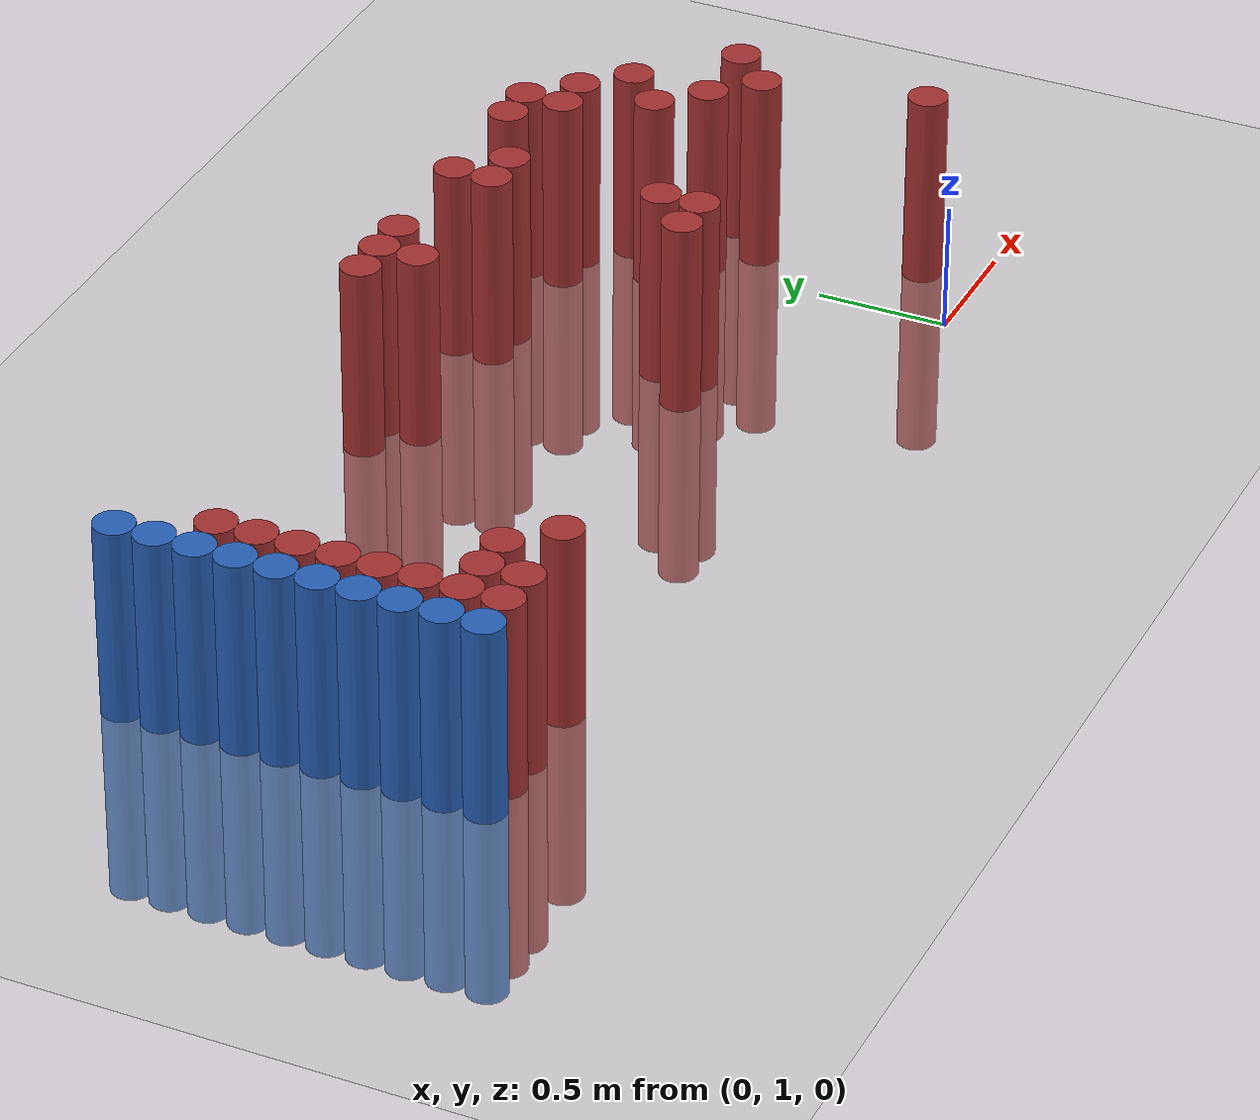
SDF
<sdf version="1.6">
 <world name="default">
  <model name="ground_plane">
   <static>1</static>
   <link name="link">
    <collision name="collision">
     <geometry><plane><normal>0 0 1</normal><size>100 100</size></plane></geometry>
     <surface><friction><ode><mu>100</mu><mu2>50</mu2></ode></friction></surface>
    </collision>
    <visual name="visual">
     <cast_shadows>0</cast_shadows>
     <geometry><plane><normal>0 0 1</normal><size>100 100</size></plane></geometry>
     <material>
      <script><uri>file://media/materials/scripts/gazebo.material</uri><name>Gazebo/Grey</name></script>
     </material>
    </visual>
   </link>
  </model>
  <model name="unit_cylinder_131">
   <static>1</static>
   <pose>-3.425000 1.225000 0.000000 0.000000 0.000000 0.000000</pose>
   <link name="link">
    <inertial>
     <mass>1</mass>
     <inertia><ixx>0.145833</ixx><ixy>0</ixy><ixz>0</ixz><iyy>0.145833</iyy><iyz>0</iyz><izz>0.125</izz></inertia>
    </inertial>
    <collision name="collision">
     <geometry><cylinder><radius>0.075000</radius><length>1.5</length></cylinder></geometry>
    </collision>
    <visual name="visual">
     <geometry><cylinder><radius>0.075000</radius><length>1.5</length></cylinder></geometry>
     <material>
      <ambient>0.152000 0.379000 0.720000 1</ambient>
      <diffuse>0.152000 0.379000 0.720000 1</diffuse>
     </material>
     <material>
      <script><name>Gazebo/Grey</name><uri>file://media/materials/scripts/gazebo.material</uri></script>
     </material>
    </visual>
   </link>
  </model>
  <model name="unit_cylinder_133">
   <static>1</static>
   <pose>-3.425000 1.375000 0.000000 0.000000 0.000000 0.000000</pose>
   <link name="link">
    <inertial>
     <mass>1</mass>
     <inertia><ixx>0.145833</ixx><ixy>0</ixy><ixz>0</ixz><iyy>0.145833</iyy><iyz>0</iyz><izz>0.125</izz></inertia>
    </inertial>
    <collision name="collision">
     <geometry><cylinder><radius>0.075000</radius><length>1.5</length></cylinder></geometry>
    </collision>
    <visual name="visual">
     <geometry><cylinder><radius>0.075000</radius><length>1.5</length></cylinder></geometry>
     <material>
      <ambient>0.152000 0.379000 0.720000 1</ambient>
      <diffuse>0.152000 0.379000 0.720000 1</diffuse>
     </material>
     <material>
      <script><name>Gazebo/Grey</name><uri>file://media/materials/scripts/gazebo.material</uri></script>
     </material>
    </visual>
   </link>
  </model>
  <model name="unit_cylinder_135">
   <static>1</static>
   <pose>-3.425000 1.525000 0.000000 0.000000 0.000000 0.000000</pose>
   <link name="link">
    <inertial>
     <mass>1</mass>
     <inertia><ixx>0.145833</ixx><ixy>0</ixy><ixz>0</ixz><iyy>0.145833</iyy><iyz>0</iyz><izz>0.125</izz></inertia>
    </inertial>
    <collision name="collision">
     <geometry><cylinder><radius>0.075000</radius><length>1.5</length></cylinder></geometry>
    </collision>
    <visual name="visual">
     <geometry><cylinder><radius>0.075000</radius><length>1.5</length></cylinder></geometry>
     <material>
      <ambient>0.152000 0.379000 0.720000 1</ambient>
      <diffuse>0.152000 0.379000 0.720000 1</diffuse>
     </material>
     <material>
      <script><name>Gazebo/Grey</name><uri>file://media/materials/scripts/gazebo.material</uri></script>
     </material>
    </visual>
   </link>
  </model>
  <model name="unit_cylinder_137">
   <static>1</static>
   <pose>-3.425000 1.675000 0.000000 0.000000 0.000000 0.000000</pose>
   <link name="link">
    <inertial>
     <mass>1</mass>
     <inertia><ixx>0.145833</ixx><ixy>0</ixy><ixz>0</ixz><iyy>0.145833</iyy><iyz>0</iyz><izz>0.125</izz></inertia>
    </inertial>
    <collision name="collision">
     <geometry><cylinder><radius>0.075000</radius><length>1.5</length></cylinder></geometry>
    </collision>
    <visual name="visual">
     <geometry><cylinder><radius>0.075000</radius><length>1.5</length></cylinder></geometry>
     <material>
      <ambient>0.152000 0.379000 0.720000 1</ambient>
      <diffuse>0.152000 0.379000 0.720000 1</diffuse>
     </material>
     <material>
      <script><name>Gazebo/Grey</name><uri>file://media/materials/scripts/gazebo.material</uri></script>
     </material>
    </visual>
   </link>
  </model>
  <model name="unit_cylinder_139">
   <static>1</static>
   <pose>-3.425000 1.825000 0.000000 0.000000 0.000000 0.000000</pose>
   <link name="link">
    <inertial>
     <mass>1</mass>
     <inertia><ixx>0.145833</ixx><ixy>0</ixy><ixz>0</ixz><iyy>0.145833</iyy><iyz>0</iyz><izz>0.125</izz></inertia>
    </inertial>
    <collision name="collision">
     <geometry><cylinder><radius>0.075000</radius><length>1.5</length></cylinder></geometry>
    </collision>
    <visual name="visual">
     <geometry><cylinder><radius>0.075000</radius><length>1.5</length></cylinder></geometry>
     <material>
      <ambient>0.152000 0.379000 0.720000 1</ambient>
      <diffuse>0.152000 0.379000 0.720000 1</diffuse>
     </material>
     <material>
      <script><name>Gazebo/Grey</name><uri>file://media/materials/scripts/gazebo.material</uri></script>
     </material>
    </visual>
   </link>
  </model>
  <model name="unit_cylinder_141">
   <static>1</static>
   <pose>-3.425000 1.975000 0.000000 0.000000 0.000000 0.000000</pose>
   <link name="link">
    <inertial>
     <mass>1</mass>
     <inertia><ixx>0.145833</ixx><ixy>0</ixy><ixz>0</ixz><iyy>0.145833</iyy><iyz>0</iyz><izz>0.125</izz></inertia>
    </inertial>
    <collision name="collision">
     <geometry><cylinder><radius>0.075000</radius><length>1.5</length></cylinder></geometry>
    </collision>
    <visual name="visual">
     <geometry><cylinder><radius>0.075000</radius><length>1.5</length></cylinder></geometry>
     <material>
      <ambient>0.152000 0.379000 0.720000 1</ambient>
      <diffuse>0.152000 0.379000 0.720000 1</diffuse>
     </material>
     <material>
      <script><name>Gazebo/Grey</name><uri>file://media/materials/scripts/gazebo.material</uri></script>
     </material>
    </visual>
   </link>
  </model>
  <model name="unit_cylinder_143">
   <static>1</static>
   <pose>-3.425000 2.125000 0.000000 0.000000 0.000000 0.000000</pose>
   <link name="link">
    <inertial>
     <mass>1</mass>
     <inertia><ixx>0.145833</ixx><ixy>0</ixy><ixz>0</ixz><iyy>0.145833</iyy><iyz>0</iyz><izz>0.125</izz></inertia>
    </inertial>
    <collision name="collision">
     <geometry><cylinder><radius>0.075000</radius><length>1.5</length></cylinder></geometry>
    </collision>
    <visual name="visual">
     <geometry><cylinder><radius>0.075000</radius><length>1.5</length></cylinder></geometry>
     <material>
      <ambient>0.152000 0.379000 0.720000 1</ambient>
      <diffuse>0.152000 0.379000 0.720000 1</diffuse>
     </material>
     <material>
      <script><name>Gazebo/Grey</name><uri>file://media/materials/scripts/gazebo.material</uri></script>
     </material>
    </visual>
   </link>
  </model>
  <model name="unit_cylinder_145">
   <static>1</static>
   <pose>-3.425000 2.275000 0.000000 0.000000 0.000000 0.000000</pose>
   <link name="link">
    <inertial>
     <mass>1</mass>
     <inertia><ixx>0.145833</ixx><ixy>0</ixy><ixz>0</ixz><iyy>0.145833</iyy><iyz>0</iyz><izz>0.125</izz></inertia>
    </inertial>
    <collision name="collision">
     <geometry><cylinder><radius>0.075000</radius><length>1.5</length></cylinder></geometry>
    </collision>
    <visual name="visual">
     <geometry><cylinder><radius>0.075000</radius><length>1.5</length></cylinder></geometry>
     <material>
      <ambient>0.152000 0.379000 0.720000 1</ambient>
      <diffuse>0.152000 0.379000 0.720000 1</diffuse>
     </material>
     <material>
      <script><name>Gazebo/Grey</name><uri>file://media/materials/scripts/gazebo.material</uri></script>
     </material>
    </visual>
   </link>
  </model>
  <model name="unit_cylinder_147">
   <static>1</static>
   <pose>-3.425000 2.425000 0.000000 0.000000 0.000000 0.000000</pose>
   <link name="link">
    <inertial>
     <mass>1</mass>
     <inertia><ixx>0.145833</ixx><ixy>0</ixy><ixz>0</ixz><iyy>0.145833</iyy><iyz>0</iyz><izz>0.125</izz></inertia>
    </inertial>
    <collision name="collision">
     <geometry><cylinder><radius>0.075000</radius><length>1.5</length></cylinder></geometry>
    </collision>
    <visual name="visual">
     <geometry><cylinder><radius>0.075000</radius><length>1.5</length></cylinder></geometry>
     <material>
      <ambient>0.152000 0.379000 0.720000 1</ambient>
      <diffuse>0.152000 0.379000 0.720000 1</diffuse>
     </material>
     <material>
      <script><name>Gazebo/Grey</name><uri>file://media/materials/scripts/gazebo.material</uri></script>
     </material>
    </visual>
   </link>
  </model>
  <model name="unit_cylinder_149">
   <static>1</static>
   <pose>-3.425000 2.575000 0.000000 0.000000 0.000000 0.000000</pose>
   <link name="link">
    <inertial>
     <mass>1</mass>
     <inertia><ixx>0.145833</ixx><ixy>0</ixy><ixz>0</ixz><iyy>0.145833</iyy><iyz>0</iyz><izz>0.125</izz></inertia>
    </inertial>
    <collision name="collision">
     <geometry><cylinder><radius>0.075000</radius><length>1.5</length></cylinder></geometry>
    </collision>
    <visual name="visual">
     <geometry><cylinder><radius>0.075000</radius><length>1.5</length></cylinder></geometry>
     <material>
      <ambient>0.152000 0.379000 0.720000 1</ambient>
      <diffuse>0.152000 0.379000 0.720000 1</diffuse>
     </material>
     <material>
      <script><name>Gazebo/Grey</name><uri>file://media/materials/scripts/gazebo.material</uri></script>
     </material>
    </visual>
   </link>
  </model>
  <model name="unit_cylinder_229">
   <static>1</static>
   <pose>-3.425000 1.225000 0.000000 0.000000 0.000000 0.000000</pose>
   <link name="link">
    <inertial>
     <mass>1</mass>
     <inertia><ixx>0.145833</ixx><ixy>0</ixy><ixz>0</ixz><iyy>0.145833</iyy><iyz>0</iyz><izz>0.125</izz></inertia>
    </inertial>
    <collision name="collision">
     <geometry><cylinder><radius>0.075000</radius><length>1.5</length></cylinder></geometry>
    </collision>
    <visual name="visual">
     <geometry><cylinder><radius>0.075000</radius><length>1.5</length></cylinder></geometry>
     <material>
      <ambient>0.152000 0.379000 0.720000 1</ambient>
      <diffuse>0.152000 0.379000 0.720000 1</diffuse>
     </material>
     <material>
      <script><name>Gazebo/Grey</name><uri>file://media/materials/scripts/gazebo.material</uri></script>
     </material>
    </visual>
   </link>
  </model>
  <model name="unit_cylinder_230">
   <static>1</static>
   <pose>-3.425000 1.375000 0.000000 0.000000 0.000000 0.000000</pose>
   <link name="link">
    <inertial>
     <mass>1</mass>
     <inertia><ixx>0.145833</ixx><ixy>0</ixy><ixz>0</ixz><iyy>0.145833</iyy><iyz>0</iyz><izz>0.125</izz></inertia>
    </inertial>
    <collision name="collision">
     <geometry><cylinder><radius>0.075000</radius><length>1.5</length></cylinder></geometry>
    </collision>
    <visual name="visual">
     <geometry><cylinder><radius>0.075000</radius><length>1.5</length></cylinder></geometry>
     <material>
      <ambient>0.152000 0.379000 0.720000 1</ambient>
      <diffuse>0.152000 0.379000 0.720000 1</diffuse>
     </material>
     <material>
      <script><name>Gazebo/Grey</name><uri>file://media/materials/scripts/gazebo.material</uri></script>
     </material>
    </visual>
   </link>
  </model>
  <model name="unit_cylinder_231">
   <static>1</static>
   <pose>-3.425000 1.525000 0.000000 0.000000 0.000000 0.000000</pose>
   <link name="link">
    <inertial>
     <mass>1</mass>
     <inertia><ixx>0.145833</ixx><ixy>0</ixy><ixz>0</ixz><iyy>0.145833</iyy><iyz>0</iyz><izz>0.125</izz></inertia>
    </inertial>
    <collision name="collision">
     <geometry><cylinder><radius>0.075000</radius><length>1.5</length></cylinder></geometry>
    </collision>
    <visual name="visual">
     <geometry><cylinder><radius>0.075000</radius><length>1.5</length></cylinder></geometry>
     <material>
      <ambient>0.152000 0.379000 0.720000 1</ambient>
      <diffuse>0.152000 0.379000 0.720000 1</diffuse>
     </material>
     <material>
      <script><name>Gazebo/Grey</name><uri>file://media/materials/scripts/gazebo.material</uri></script>
     </material>
    </visual>
   </link>
  </model>
  <model name="unit_cylinder_232">
   <static>1</static>
   <pose>-3.425000 1.675000 0.000000 0.000000 0.000000 0.000000</pose>
   <link name="link">
    <inertial>
     <mass>1</mass>
     <inertia><ixx>0.145833</ixx><ixy>0</ixy><ixz>0</ixz><iyy>0.145833</iyy><iyz>0</iyz><izz>0.125</izz></inertia>
    </inertial>
    <collision name="collision">
     <geometry><cylinder><radius>0.075000</radius><length>1.5</length></cylinder></geometry>
    </collision>
    <visual name="visual">
     <geometry><cylinder><radius>0.075000</radius><length>1.5</length></cylinder></geometry>
     <material>
      <ambient>0.152000 0.379000 0.720000 1</ambient>
      <diffuse>0.152000 0.379000 0.720000 1</diffuse>
     </material>
     <material>
      <script><name>Gazebo/Grey</name><uri>file://media/materials/scripts/gazebo.material</uri></script>
     </material>
    </visual>
   </link>
  </model>
  <model name="unit_cylinder_233">
   <static>1</static>
   <pose>-3.425000 1.825000 0.000000 0.000000 0.000000 0.000000</pose>
   <link name="link">
    <inertial>
     <mass>1</mass>
     <inertia><ixx>0.145833</ixx><ixy>0</ixy><ixz>0</ixz><iyy>0.145833</iyy><iyz>0</iyz><izz>0.125</izz></inertia>
    </inertial>
    <collision name="collision">
     <geometry><cylinder><radius>0.075000</radius><length>1.5</length></cylinder></geometry>
    </collision>
    <visual name="visual">
     <geometry><cylinder><radius>0.075000</radius><length>1.5</length></cylinder></geometry>
     <material>
      <ambient>0.152000 0.379000 0.720000 1</ambient>
      <diffuse>0.152000 0.379000 0.720000 1</diffuse>
     </material>
     <material>
      <script><name>Gazebo/Grey</name><uri>file://media/materials/scripts/gazebo.material</uri></script>
     </material>
    </visual>
   </link>
  </model>
  <model name="unit_cylinder_234">
   <static>1</static>
   <pose>-3.425000 1.975000 0.000000 0.000000 0.000000 0.000000</pose>
   <link name="link">
    <inertial>
     <mass>1</mass>
     <inertia><ixx>0.145833</ixx><ixy>0</ixy><ixz>0</ixz><iyy>0.145833</iyy><iyz>0</iyz><izz>0.125</izz></inertia>
    </inertial>
    <collision name="collision">
     <geometry><cylinder><radius>0.075000</radius><length>1.5</length></cylinder></geometry>
    </collision>
    <visual name="visual">
     <geometry><cylinder><radius>0.075000</radius><length>1.5</length></cylinder></geometry>
     <material>
      <ambient>0.152000 0.379000 0.720000 1</ambient>
      <diffuse>0.152000 0.379000 0.720000 1</diffuse>
     </material>
     <material>
      <script><name>Gazebo/Grey</name><uri>file://media/materials/scripts/gazebo.material</uri></script>
     </material>
    </visual>
   </link>
  </model>
  <model name="unit_cylinder_235">
   <static>1</static>
   <pose>-3.425000 2.125000 0.000000 0.000000 0.000000 0.000000</pose>
   <link name="link">
    <inertial>
     <mass>1</mass>
     <inertia><ixx>0.145833</ixx><ixy>0</ixy><ixz>0</ixz><iyy>0.145833</iyy><iyz>0</iyz><izz>0.125</izz></inertia>
    </inertial>
    <collision name="collision">
     <geometry><cylinder><radius>0.075000</radius><length>1.5</length></cylinder></geometry>
    </collision>
    <visual name="visual">
     <geometry><cylinder><radius>0.075000</radius><length>1.5</length></cylinder></geometry>
     <material>
      <ambient>0.152000 0.379000 0.720000 1</ambient>
      <diffuse>0.152000 0.379000 0.720000 1</diffuse>
     </material>
     <material>
      <script><name>Gazebo/Grey</name><uri>file://media/materials/scripts/gazebo.material</uri></script>
     </material>
    </visual>
   </link>
  </model>
  <model name="unit_cylinder_236">
   <static>1</static>
   <pose>-3.425000 2.275000 0.000000 0.000000 0.000000 0.000000</pose>
   <link name="link">
    <inertial>
     <mass>1</mass>
     <inertia><ixx>0.145833</ixx><ixy>0</ixy><ixz>0</ixz><iyy>0.145833</iyy><iyz>0</iyz><izz>0.125</izz></inertia>
    </inertial>
    <collision name="collision">
     <geometry><cylinder><radius>0.075000</radius><length>1.5</length></cylinder></geometry>
    </collision>
    <visual name="visual">
     <geometry><cylinder><radius>0.075000</radius><length>1.5</length></cylinder></geometry>
     <material>
      <ambient>0.152000 0.379000 0.720000 1</ambient>
      <diffuse>0.152000 0.379000 0.720000 1</diffuse>
     </material>
     <material>
      <script><name>Gazebo/Grey</name><uri>file://media/materials/scripts/gazebo.material</uri></script>
     </material>
    </visual>
   </link>
  </model>
  <model name="unit_cylinder_237">
   <static>1</static>
   <pose>-3.425000 2.425000 0.000000 0.000000 0.000000 0.000000</pose>
   <link name="link">
    <inertial>
     <mass>1</mass>
     <inertia><ixx>0.145833</ixx><ixy>0</ixy><ixz>0</ixz><iyy>0.145833</iyy><iyz>0</iyz><izz>0.125</izz></inertia>
    </inertial>
    <collision name="collision">
     <geometry><cylinder><radius>0.075000</radius><length>1.5</length></cylinder></geometry>
    </collision>
    <visual name="visual">
     <geometry><cylinder><radius>0.075000</radius><length>1.5</length></cylinder></geometry>
     <material>
      <ambient>0.152000 0.379000 0.720000 1</ambient>
      <diffuse>0.152000 0.379000 0.720000 1</diffuse>
     </material>
     <material>
      <script><name>Gazebo/Grey</name><uri>file://media/materials/scripts/gazebo.material</uri></script>
     </material>
    </visual>
   </link>
  </model>
  <model name="unit_cylinder_238">
   <static>1</static>
   <pose>-3.425000 2.575000 0.000000 0.000000 0.000000 0.000000</pose>
   <link name="link">
    <inertial>
     <mass>1</mass>
     <inertia><ixx>0.145833</ixx><ixy>0</ixy><ixz>0</ixz><iyy>0.145833</iyy><iyz>0</iyz><izz>0.125</izz></inertia>
    </inertial>
    <collision name="collision">
     <geometry><cylinder><radius>0.075000</radius><length>1.5</length></cylinder></geometry>
    </collision>
    <visual name="visual">
     <geometry><cylinder><radius>0.075000</radius><length>1.5</length></cylinder></geometry>
     <material>
      <ambient>0.152000 0.379000 0.720000 1</ambient>
      <diffuse>0.152000 0.379000 0.720000 1</diffuse>
     </material>
     <material>
      <script><name>Gazebo/Grey</name><uri>file://media/materials/scripts/gazebo.material</uri></script>
     </material>
    </visual>
   </link>
  </model>
  <model name="unit_cylinder_264">
   <static>1</static>
   <pose>-3.275000 1.225000 0.000000 0.000000 0.000000 0.000000</pose>
   <link name="link">
    <inertial>
     <mass>1</mass>
     <inertia><ixx>0.145833</ixx><ixy>0</ixy><ixz>0</ixz><iyy>0.145833</iyy><iyz>0</iyz><izz>0.125</izz></inertia>
    </inertial>
    <collision name="collision">
     <geometry><cylinder><radius>0.075000</radius><length>1.5</length></cylinder></geometry>
    </collision>
    <visual name="visual">
     <geometry><cylinder><radius>0.075000</radius><length>1.5</length></cylinder></geometry>
     <material>
      <ambient>0.648000 0.192000 0.192000 1</ambient>
      <diffuse>0.648000 0.192000 0.192000 1</diffuse>
     </material>
     <material>
      <script><name>Gazebo/Grey</name><uri>file://media/materials/scripts/gazebo.material</uri></script>
     </material>
    </visual>
   </link>
  </model>
  <model name="unit_cylinder_265">
   <static>1</static>
   <pose>-3.275000 1.375000 0.000000 0.000000 0.000000 0.000000</pose>
   <link name="link">
    <inertial>
     <mass>1</mass>
     <inertia><ixx>0.145833</ixx><ixy>0</ixy><ixz>0</ixz><iyy>0.145833</iyy><iyz>0</iyz><izz>0.125</izz></inertia>
    </inertial>
    <collision name="collision">
     <geometry><cylinder><radius>0.075000</radius><length>1.5</length></cylinder></geometry>
    </collision>
    <visual name="visual">
     <geometry><cylinder><radius>0.075000</radius><length>1.5</length></cylinder></geometry>
     <material>
      <ambient>0.648000 0.192000 0.192000 1</ambient>
      <diffuse>0.648000 0.192000 0.192000 1</diffuse>
     </material>
     <material>
      <script><name>Gazebo/Grey</name><uri>file://media/materials/scripts/gazebo.material</uri></script>
     </material>
    </visual>
   </link>
  </model>
  <model name="unit_cylinder_266">
   <static>1</static>
   <pose>-3.275000 1.525000 0.000000 0.000000 0.000000 0.000000</pose>
   <link name="link">
    <inertial>
     <mass>1</mass>
     <inertia><ixx>0.145833</ixx><ixy>0</ixy><ixz>0</ixz><iyy>0.145833</iyy><iyz>0</iyz><izz>0.125</izz></inertia>
    </inertial>
    <collision name="collision">
     <geometry><cylinder><radius>0.075000</radius><length>1.5</length></cylinder></geometry>
    </collision>
    <visual name="visual">
     <geometry><cylinder><radius>0.075000</radius><length>1.5</length></cylinder></geometry>
     <material>
      <ambient>0.648000 0.192000 0.192000 1</ambient>
      <diffuse>0.648000 0.192000 0.192000 1</diffuse>
     </material>
     <material>
      <script><name>Gazebo/Grey</name><uri>file://media/materials/scripts/gazebo.material</uri></script>
     </material>
    </visual>
   </link>
  </model>
  <model name="unit_cylinder_267">
   <static>1</static>
   <pose>-3.275000 1.675000 0.000000 0.000000 0.000000 0.000000</pose>
   <link name="link">
    <inertial>
     <mass>1</mass>
     <inertia><ixx>0.145833</ixx><ixy>0</ixy><ixz>0</ixz><iyy>0.145833</iyy><iyz>0</iyz><izz>0.125</izz></inertia>
    </inertial>
    <collision name="collision">
     <geometry><cylinder><radius>0.075000</radius><length>1.5</length></cylinder></geometry>
    </collision>
    <visual name="visual">
     <geometry><cylinder><radius>0.075000</radius><length>1.5</length></cylinder></geometry>
     <material>
      <ambient>0.648000 0.192000 0.192000 1</ambient>
      <diffuse>0.648000 0.192000 0.192000 1</diffuse>
     </material>
     <material>
      <script><name>Gazebo/Grey</name><uri>file://media/materials/scripts/gazebo.material</uri></script>
     </material>
    </visual>
   </link>
  </model>
  <model name="unit_cylinder_268">
   <static>1</static>
   <pose>-3.275000 1.825000 0.000000 0.000000 0.000000 0.000000</pose>
   <link name="link">
    <inertial>
     <mass>1</mass>
     <inertia><ixx>0.145833</ixx><ixy>0</ixy><ixz>0</ixz><iyy>0.145833</iyy><iyz>0</iyz><izz>0.125</izz></inertia>
    </inertial>
    <collision name="collision">
     <geometry><cylinder><radius>0.075000</radius><length>1.5</length></cylinder></geometry>
    </collision>
    <visual name="visual">
     <geometry><cylinder><radius>0.075000</radius><length>1.5</length></cylinder></geometry>
     <material>
      <ambient>0.648000 0.192000 0.192000 1</ambient>
      <diffuse>0.648000 0.192000 0.192000 1</diffuse>
     </material>
     <material>
      <script><name>Gazebo/Grey</name><uri>file://media/materials/scripts/gazebo.material</uri></script>
     </material>
    </visual>
   </link>
  </model>
  <model name="unit_cylinder_269">
   <static>1</static>
   <pose>-3.275000 1.975000 0.000000 0.000000 0.000000 0.000000</pose>
   <link name="link">
    <inertial>
     <mass>1</mass>
     <inertia><ixx>0.145833</ixx><ixy>0</ixy><ixz>0</ixz><iyy>0.145833</iyy><iyz>0</iyz><izz>0.125</izz></inertia>
    </inertial>
    <collision name="collision">
     <geometry><cylinder><radius>0.075000</radius><length>1.5</length></cylinder></geometry>
    </collision>
    <visual name="visual">
     <geometry><cylinder><radius>0.075000</radius><length>1.5</length></cylinder></geometry>
     <material>
      <ambient>0.648000 0.192000 0.192000 1</ambient>
      <diffuse>0.648000 0.192000 0.192000 1</diffuse>
     </material>
     <material>
      <script><name>Gazebo/Grey</name><uri>file://media/materials/scripts/gazebo.material</uri></script>
     </material>
    </visual>
   </link>
  </model>
  <model name="unit_cylinder_270">
   <static>1</static>
   <pose>-3.275000 2.125000 0.000000 0.000000 0.000000 0.000000</pose>
   <link name="link">
    <inertial>
     <mass>1</mass>
     <inertia><ixx>0.145833</ixx><ixy>0</ixy><ixz>0</ixz><iyy>0.145833</iyy><iyz>0</iyz><izz>0.125</izz></inertia>
    </inertial>
    <collision name="collision">
     <geometry><cylinder><radius>0.075000</radius><length>1.5</length></cylinder></geometry>
    </collision>
    <visual name="visual">
     <geometry><cylinder><radius>0.075000</radius><length>1.5</length></cylinder></geometry>
     <material>
      <ambient>0.648000 0.192000 0.192000 1</ambient>
      <diffuse>0.648000 0.192000 0.192000 1</diffuse>
     </material>
     <material>
      <script><name>Gazebo/Grey</name><uri>file://media/materials/scripts/gazebo.material</uri></script>
     </material>
    </visual>
   </link>
  </model>
  <model name="unit_cylinder_271">
   <static>1</static>
   <pose>-3.275000 2.275000 0.000000 0.000000 0.000000 0.000000</pose>
   <link name="link">
    <inertial>
     <mass>1</mass>
     <inertia><ixx>0.145833</ixx><ixy>0</ixy><ixz>0</ixz><iyy>0.145833</iyy><iyz>0</iyz><izz>0.125</izz></inertia>
    </inertial>
    <collision name="collision">
     <geometry><cylinder><radius>0.075000</radius><length>1.5</length></cylinder></geometry>
    </collision>
    <visual name="visual">
     <geometry><cylinder><radius>0.075000</radius><length>1.5</length></cylinder></geometry>
     <material>
      <ambient>0.648000 0.192000 0.192000 1</ambient>
      <diffuse>0.648000 0.192000 0.192000 1</diffuse>
     </material>
     <material>
      <script><name>Gazebo/Grey</name><uri>file://media/materials/scripts/gazebo.material</uri></script>
     </material>
    </visual>
   </link>
  </model>
  <model name="unit_cylinder_281">
   <static>1</static>
   <pose>-3.125000 1.225000 0.000000 0.000000 0.000000 0.000000</pose>
   <link name="link">
    <inertial>
     <mass>1</mass>
     <inertia><ixx>0.145833</ixx><ixy>0</ixy><ixz>0</ixz><iyy>0.145833</iyy><iyz>0</iyz><izz>0.125</izz></inertia>
    </inertial>
    <collision name="collision">
     <geometry><cylinder><radius>0.075000</radius><length>1.5</length></cylinder></geometry>
    </collision>
    <visual name="visual">
     <geometry><cylinder><radius>0.075000</radius><length>1.5</length></cylinder></geometry>
     <material>
      <ambient>0.648000 0.192000 0.192000 1</ambient>
      <diffuse>0.648000 0.192000 0.192000 1</diffuse>
     </material>
     <material>
      <script><name>Gazebo/Grey</name><uri>file://media/materials/scripts/gazebo.material</uri></script>
     </material>
    </visual>
   </link>
  </model>
  <model name="unit_cylinder_282">
   <static>1</static>
   <pose>-3.125000 1.375000 0.000000 0.000000 0.000000 0.000000</pose>
   <link name="link">
    <inertial>
     <mass>1</mass>
     <inertia><ixx>0.145833</ixx><ixy>0</ixy><ixz>0</ixz><iyy>0.145833</iyy><iyz>0</iyz><izz>0.125</izz></inertia>
    </inertial>
    <collision name="collision">
     <geometry><cylinder><radius>0.075000</radius><length>1.5</length></cylinder></geometry>
    </collision>
    <visual name="visual">
     <geometry><cylinder><radius>0.075000</radius><length>1.5</length></cylinder></geometry>
     <material>
      <ambient>0.648000 0.192000 0.192000 1</ambient>
      <diffuse>0.648000 0.192000 0.192000 1</diffuse>
     </material>
     <material>
      <script><name>Gazebo/Grey</name><uri>file://media/materials/scripts/gazebo.material</uri></script>
     </material>
    </visual>
   </link>
  </model>
  <model name="unit_cylinder_292">
   <static>1</static>
   <pose>-2.975000 1.375000 0.000000 0.000000 0.000000 0.000000</pose>
   <link name="link">
    <inertial>
     <mass>1</mass>
     <inertia><ixx>0.145833</ixx><ixy>0</ixy><ixz>0</ixz><iyy>0.145833</iyy><iyz>0</iyz><izz>0.125</izz></inertia>
    </inertial>
    <collision name="collision">
     <geometry><cylinder><radius>0.075000</radius><length>1.5</length></cylinder></geometry>
    </collision>
    <visual name="visual">
     <geometry><cylinder><radius>0.075000</radius><length>1.5</length></cylinder></geometry>
     <material>
      <ambient>0.648000 0.192000 0.192000 1</ambient>
      <diffuse>0.648000 0.192000 0.192000 1</diffuse>
     </material>
     <material>
      <script><name>Gazebo/Grey</name><uri>file://media/materials/scripts/gazebo.material</uri></script>
     </material>
    </visual>
   </link>
  </model>
  <model name="unit_cylinder_297">
   <static>1</static>
   <pose>-2.825000 1.225000 0.000000 0.000000 0.000000 0.000000</pose>
   <link name="link">
    <inertial>
     <mass>1</mass>
     <inertia><ixx>0.145833</ixx><ixy>0</ixy><ixz>0</ixz><iyy>0.145833</iyy><iyz>0</iyz><izz>0.125</izz></inertia>
    </inertial>
    <collision name="collision">
     <geometry><cylinder><radius>0.075000</radius><length>1.5</length></cylinder></geometry>
    </collision>
    <visual name="visual">
     <geometry><cylinder><radius>0.075000</radius><length>1.5</length></cylinder></geometry>
     <material>
      <ambient>0.648000 0.192000 0.192000 1</ambient>
      <diffuse>0.648000 0.192000 0.192000 1</diffuse>
     </material>
     <material>
      <script><name>Gazebo/Grey</name><uri>file://media/materials/scripts/gazebo.material</uri></script>
     </material>
    </visual>
   </link>
  </model>
  <model name="unit_cylinder_304">
   <static>1</static>
   <pose>-1.625000 2.575000 0.000000 0.000000 0.000000 0.000000</pose>
   <link name="link">
    <inertial>
     <mass>1</mass>
     <inertia><ixx>0.145833</ixx><ixy>0</ixy><ixz>0</ixz><iyy>0.145833</iyy><iyz>0</iyz><izz>0.125</izz></inertia>
    </inertial>
    <collision name="collision">
     <geometry><cylinder><radius>0.075000</radius><length>1.5</length></cylinder></geometry>
    </collision>
    <visual name="visual">
     <geometry><cylinder><radius>0.075000</radius><length>1.5</length></cylinder></geometry>
     <material>
      <ambient>0.648000 0.192000 0.192000 1</ambient>
      <diffuse>0.648000 0.192000 0.192000 1</diffuse>
     </material>
     <material>
      <script><name>Gazebo/Grey</name><uri>file://media/materials/scripts/gazebo.material</uri></script>
     </material>
    </visual>
   </link>
  </model>
  <model name="unit_cylinder_307">
   <static>1</static>
   <pose>-1.475000 2.425000 0.000000 0.000000 0.000000 0.000000</pose>
   <link name="link">
    <inertial>
     <mass>1</mass>
     <inertia><ixx>0.145833</ixx><ixy>0</ixy><ixz>0</ixz><iyy>0.145833</iyy><iyz>0</iyz><izz>0.125</izz></inertia>
    </inertial>
    <collision name="collision">
     <geometry><cylinder><radius>0.075000</radius><length>1.5</length></cylinder></geometry>
    </collision>
    <visual name="visual">
     <geometry><cylinder><radius>0.075000</radius><length>1.5</length></cylinder></geometry>
     <material>
      <ambient>0.648000 0.192000 0.192000 1</ambient>
      <diffuse>0.648000 0.192000 0.192000 1</diffuse>
     </material>
     <material>
      <script><name>Gazebo/Grey</name><uri>file://media/materials/scripts/gazebo.material</uri></script>
     </material>
    </visual>
   </link>
  </model>
  <model name="unit_cylinder_308">
   <static>1</static>
   <pose>-1.475000 2.575000 0.000000 0.000000 0.000000 0.000000</pose>
   <link name="link">
    <inertial>
     <mass>1</mass>
     <inertia><ixx>0.145833</ixx><ixy>0</ixy><ixz>0</ixz><iyy>0.145833</iyy><iyz>0</iyz><izz>0.125</izz></inertia>
    </inertial>
    <collision name="collision">
     <geometry><cylinder><radius>0.075000</radius><length>1.5</length></cylinder></geometry>
    </collision>
    <visual name="visual">
     <geometry><cylinder><radius>0.075000</radius><length>1.5</length></cylinder></geometry>
     <material>
      <ambient>0.648000 0.192000 0.192000 1</ambient>
      <diffuse>0.648000 0.192000 0.192000 1</diffuse>
     </material>
     <material>
      <script><name>Gazebo/Grey</name><uri>file://media/materials/scripts/gazebo.material</uri></script>
     </material>
    </visual>
   </link>
  </model>
  <model name="unit_cylinder_311">
   <static>1</static>
   <pose>-1.325000 2.575000 0.000000 0.000000 0.000000 0.000000</pose>
   <link name="link">
    <inertial>
     <mass>1</mass>
     <inertia><ixx>0.145833</ixx><ixy>0</ixy><ixz>0</ixz><iyy>0.145833</iyy><iyz>0</iyz><izz>0.125</izz></inertia>
    </inertial>
    <collision name="collision">
     <geometry><cylinder><radius>0.075000</radius><length>1.5</length></cylinder></geometry>
    </collision>
    <visual name="visual">
     <geometry><cylinder><radius>0.075000</radius><length>1.5</length></cylinder></geometry>
     <material>
      <ambient>0.648000 0.192000 0.192000 1</ambient>
      <diffuse>0.648000 0.192000 0.192000 1</diffuse>
     </material>
     <material>
      <script><name>Gazebo/Grey</name><uri>file://media/materials/scripts/gazebo.material</uri></script>
     </material>
    </visual>
   </link>
  </model>
  <model name="unit_cylinder_336">
   <static>1</static>
   <pose>-0.875000 1.675000 0.000000 0.000000 0.000000 0.000000</pose>
   <link name="link">
    <inertial>
     <mass>1</mass>
     <inertia><ixx>0.145833</ixx><ixy>0</ixy><ixz>0</ixz><iyy>0.145833</iyy><iyz>0</iyz><izz>0.125</izz></inertia>
    </inertial>
    <collision name="collision">
     <geometry><cylinder><radius>0.075000</radius><length>1.5</length></cylinder></geometry>
    </collision>
    <visual name="visual">
     <geometry><cylinder><radius>0.075000</radius><length>1.5</length></cylinder></geometry>
     <material>
      <ambient>0.648000 0.192000 0.192000 1</ambient>
      <diffuse>0.648000 0.192000 0.192000 1</diffuse>
     </material>
     <material>
      <script><name>Gazebo/Grey</name><uri>file://media/materials/scripts/gazebo.material</uri></script>
     </material>
    </visual>
   </link>
  </model>
  <model name="unit_cylinder_337">
   <static>1</static>
   <pose>-0.875000 2.425000 0.000000 0.000000 0.000000 0.000000</pose>
   <link name="link">
    <inertial>
     <mass>1</mass>
     <inertia><ixx>0.145833</ixx><ixy>0</ixy><ixz>0</ixz><iyy>0.145833</iyy><iyz>0</iyz><izz>0.125</izz></inertia>
    </inertial>
    <collision name="collision">
     <geometry><cylinder><radius>0.075000</radius><length>1.5</length></cylinder></geometry>
    </collision>
    <visual name="visual">
     <geometry><cylinder><radius>0.075000</radius><length>1.5</length></cylinder></geometry>
     <material>
      <ambient>0.648000 0.192000 0.192000 1</ambient>
      <diffuse>0.648000 0.192000 0.192000 1</diffuse>
     </material>
     <material>
      <script><name>Gazebo/Grey</name><uri>file://media/materials/scripts/gazebo.material</uri></script>
     </material>
    </visual>
   </link>
  </model>
  <model name="unit_cylinder_338">
   <static>1</static>
   <pose>-0.875000 2.575000 0.000000 0.000000 0.000000 0.000000</pose>
   <link name="link">
    <inertial>
     <mass>1</mass>
     <inertia><ixx>0.145833</ixx><ixy>0</ixy><ixz>0</ixz><iyy>0.145833</iyy><iyz>0</iyz><izz>0.125</izz></inertia>
    </inertial>
    <collision name="collision">
     <geometry><cylinder><radius>0.075000</radius><length>1.5</length></cylinder></geometry>
    </collision>
    <visual name="visual">
     <geometry><cylinder><radius>0.075000</radius><length>1.5</length></cylinder></geometry>
     <material>
      <ambient>0.648000 0.192000 0.192000 1</ambient>
      <diffuse>0.648000 0.192000 0.192000 1</diffuse>
     </material>
     <material>
      <script><name>Gazebo/Grey</name><uri>file://media/materials/scripts/gazebo.material</uri></script>
     </material>
    </visual>
   </link>
  </model>
  <model name="unit_cylinder_342">
   <static>1</static>
   <pose>-0.725000 1.675000 0.000000 0.000000 0.000000 0.000000</pose>
   <link name="link">
    <inertial>
     <mass>1</mass>
     <inertia><ixx>0.145833</ixx><ixy>0</ixy><ixz>0</ixz><iyy>0.145833</iyy><iyz>0</iyz><izz>0.125</izz></inertia>
    </inertial>
    <collision name="collision">
     <geometry><cylinder><radius>0.075000</radius><length>1.5</length></cylinder></geometry>
    </collision>
    <visual name="visual">
     <geometry><cylinder><radius>0.075000</radius><length>1.5</length></cylinder></geometry>
     <material>
      <ambient>0.648000 0.192000 0.192000 1</ambient>
      <diffuse>0.648000 0.192000 0.192000 1</diffuse>
     </material>
     <material>
      <script><name>Gazebo/Grey</name><uri>file://media/materials/scripts/gazebo.material</uri></script>
     </material>
    </visual>
   </link>
  </model>
  <model name="unit_cylinder_343">
   <static>1</static>
   <pose>-0.725000 1.825000 0.000000 0.000000 0.000000 0.000000</pose>
   <link name="link">
    <inertial>
     <mass>1</mass>
     <inertia><ixx>0.145833</ixx><ixy>0</ixy><ixz>0</ixz><iyy>0.145833</iyy><iyz>0</iyz><izz>0.125</izz></inertia>
    </inertial>
    <collision name="collision">
     <geometry><cylinder><radius>0.075000</radius><length>1.5</length></cylinder></geometry>
    </collision>
    <visual name="visual">
     <geometry><cylinder><radius>0.075000</radius><length>1.5</length></cylinder></geometry>
     <material>
      <ambient>0.648000 0.192000 0.192000 1</ambient>
      <diffuse>0.648000 0.192000 0.192000 1</diffuse>
     </material>
     <material>
      <script><name>Gazebo/Grey</name><uri>file://media/materials/scripts/gazebo.material</uri></script>
     </material>
    </visual>
   </link>
  </model>
  <model name="unit_cylinder_344">
   <static>1</static>
   <pose>-0.725000 2.425000 0.000000 0.000000 0.000000 0.000000</pose>
   <link name="link">
    <inertial>
     <mass>1</mass>
     <inertia><ixx>0.145833</ixx><ixy>0</ixy><ixz>0</ixz><iyy>0.145833</iyy><iyz>0</iyz><izz>0.125</izz></inertia>
    </inertial>
    <collision name="collision">
     <geometry><cylinder><radius>0.075000</radius><length>1.5</length></cylinder></geometry>
    </collision>
    <visual name="visual">
     <geometry><cylinder><radius>0.075000</radius><length>1.5</length></cylinder></geometry>
     <material>
      <ambient>0.648000 0.192000 0.192000 1</ambient>
      <diffuse>0.648000 0.192000 0.192000 1</diffuse>
     </material>
     <material>
      <script><name>Gazebo/Grey</name><uri>file://media/materials/scripts/gazebo.material</uri></script>
     </material>
    </visual>
   </link>
  </model>
  <model name="unit_cylinder_345">
   <static>1</static>
   <pose>-0.425000 2.575000 0.000000 0.000000 0.000000 0.000000</pose>
   <link name="link">
    <inertial>
     <mass>1</mass>
     <inertia><ixx>0.145833</ixx><ixy>0</ixy><ixz>0</ixz><iyy>0.145833</iyy><iyz>0</iyz><izz>0.125</izz></inertia>
    </inertial>
    <collision name="collision">
     <geometry><cylinder><radius>0.075000</radius><length>1.5</length></cylinder></geometry>
    </collision>
    <visual name="visual">
     <geometry><cylinder><radius>0.075000</radius><length>1.5</length></cylinder></geometry>
     <material>
      <ambient>0.648000 0.192000 0.192000 1</ambient>
      <diffuse>0.648000 0.192000 0.192000 1</diffuse>
     </material>
     <material>
      <script><name>Gazebo/Grey</name><uri>file://media/materials/scripts/gazebo.material</uri></script>
     </material>
    </visual>
   </link>
  </model>
  <model name="unit_cylinder_347">
   <static>1</static>
   <pose>-0.275000 2.425000 0.000000 0.000000 0.000000 0.000000</pose>
   <link name="link">
    <inertial>
     <mass>1</mass>
     <inertia><ixx>0.145833</ixx><ixy>0</ixy><ixz>0</ixz><iyy>0.145833</iyy><iyz>0</iyz><izz>0.125</izz></inertia>
    </inertial>
    <collision name="collision">
     <geometry><cylinder><radius>0.075000</radius><length>1.5</length></cylinder></geometry>
    </collision>
    <visual name="visual">
     <geometry><cylinder><radius>0.075000</radius><length>1.5</length></cylinder></geometry>
     <material>
      <ambient>0.648000 0.192000 0.192000 1</ambient>
      <diffuse>0.648000 0.192000 0.192000 1</diffuse>
     </material>
     <material>
      <script><name>Gazebo/Grey</name><uri>file://media/materials/scripts/gazebo.material</uri></script>
     </material>
    </visual>
   </link>
  </model>
  <model name="unit_cylinder_348">
   <static>1</static>
   <pose>-0.275000 2.575000 0.000000 0.000000 0.000000 0.000000</pose>
   <link name="link">
    <inertial>
     <mass>1</mass>
     <inertia><ixx>0.145833</ixx><ixy>0</ixy><ixz>0</ixz><iyy>0.145833</iyy><iyz>0</iyz><izz>0.125</izz></inertia>
    </inertial>
    <collision name="collision">
     <geometry><cylinder><radius>0.075000</radius><length>1.5</length></cylinder></geometry>
    </collision>
    <visual name="visual">
     <geometry><cylinder><radius>0.075000</radius><length>1.5</length></cylinder></geometry>
     <material>
      <ambient>0.648000 0.192000 0.192000 1</ambient>
      <diffuse>0.648000 0.192000 0.192000 1</diffuse>
     </material>
     <material>
      <script><name>Gazebo/Grey</name><uri>file://media/materials/scripts/gazebo.material</uri></script>
     </material>
    </visual>
   </link>
  </model>
  <model name="unit_cylinder_352">
   <static>1</static>
   <pose>-0.125000 2.125000 0.000000 0.000000 0.000000 0.000000</pose>
   <link name="link">
    <inertial>
     <mass>1</mass>
     <inertia><ixx>0.145833</ixx><ixy>0</ixy><ixz>0</ixz><iyy>0.145833</iyy><iyz>0</iyz><izz>0.125</izz></inertia>
    </inertial>
    <collision name="collision">
     <geometry><cylinder><radius>0.075000</radius><length>1.5</length></cylinder></geometry>
    </collision>
    <visual name="visual">
     <geometry><cylinder><radius>0.075000</radius><length>1.5</length></cylinder></geometry>
     <material>
      <ambient>0.648000 0.192000 0.192000 1</ambient>
      <diffuse>0.648000 0.192000 0.192000 1</diffuse>
     </material>
     <material>
      <script><name>Gazebo/Grey</name><uri>file://media/materials/scripts/gazebo.material</uri></script>
     </material>
    </visual>
   </link>
  </model>
  <model name="unit_cylinder_353">
   <static>1</static>
   <pose>-0.125000 2.425000 0.000000 0.000000 0.000000 0.000000</pose>
   <link name="link">
    <inertial>
     <mass>1</mass>
     <inertia><ixx>0.145833</ixx><ixy>0</ixy><ixz>0</ixz><iyy>0.145833</iyy><iyz>0</iyz><izz>0.125</izz></inertia>
    </inertial>
    <collision name="collision">
     <geometry><cylinder><radius>0.075000</radius><length>1.5</length></cylinder></geometry>
    </collision>
    <visual name="visual">
     <geometry><cylinder><radius>0.075000</radius><length>1.5</length></cylinder></geometry>
     <material>
      <ambient>0.648000 0.192000 0.192000 1</ambient>
      <diffuse>0.648000 0.192000 0.192000 1</diffuse>
     </material>
     <material>
      <script><name>Gazebo/Grey</name><uri>file://media/materials/scripts/gazebo.material</uri></script>
     </material>
    </visual>
   </link>
  </model>
  <model name="unit_cylinder_356">
   <static>1</static>
   <pose>0.025000 1.975000 0.000000 0.000000 0.000000 0.000000</pose>
   <link name="link">
    <inertial>
     <mass>1</mass>
     <inertia><ixx>0.145833</ixx><ixy>0</ixy><ixz>0</ixz><iyy>0.145833</iyy><iyz>0</iyz><izz>0.125</izz></inertia>
    </inertial>
    <collision name="collision">
     <geometry><cylinder><radius>0.075000</radius><length>1.5</length></cylinder></geometry>
    </collision>
    <visual name="visual">
     <geometry><cylinder><radius>0.075000</radius><length>1.5</length></cylinder></geometry>
     <material>
      <ambient>0.648000 0.192000 0.192000 1</ambient>
      <diffuse>0.648000 0.192000 0.192000 1</diffuse>
     </material>
     <material>
      <script><name>Gazebo/Grey</name><uri>file://media/materials/scripts/gazebo.material</uri></script>
     </material>
    </visual>
   </link>
  </model>
  <model name="unit_cylinder_357">
   <static>1</static>
   <pose>0.025000 2.275000 0.000000 0.000000 0.000000 0.000000</pose>
   <link name="link">
    <inertial>
     <mass>1</mass>
     <inertia><ixx>0.145833</ixx><ixy>0</ixy><ixz>0</ixz><iyy>0.145833</iyy><iyz>0</iyz><izz>0.125</izz></inertia>
    </inertial>
    <collision name="collision">
     <geometry><cylinder><radius>0.075000</radius><length>1.5</length></cylinder></geometry>
    </collision>
    <visual name="visual">
     <geometry><cylinder><radius>0.075000</radius><length>1.5</length></cylinder></geometry>
     <material>
      <ambient>0.648000 0.192000 0.192000 1</ambient>
      <diffuse>0.648000 0.192000 0.192000 1</diffuse>
     </material>
     <material>
      <script><name>Gazebo/Grey</name><uri>file://media/materials/scripts/gazebo.material</uri></script>
     </material>
    </visual>
   </link>
  </model>
  <model name="unit_cylinder_363">
   <static>1</static>
   <pose>0.175000 1.825000 0.000000 0.000000 0.000000 0.000000</pose>
   <link name="link">
    <inertial>
     <mass>1</mass>
     <inertia><ixx>0.145833</ixx><ixy>0</ixy><ixz>0</ixz><iyy>0.145833</iyy><iyz>0</iyz><izz>0.125</izz></inertia>
    </inertial>
    <collision name="collision">
     <geometry><cylinder><radius>0.075000</radius><length>1.5</length></cylinder></geometry>
    </collision>
    <visual name="visual">
     <geometry><cylinder><radius>0.075000</radius><length>1.5</length></cylinder></geometry>
     <material>
      <ambient>0.648000 0.192000 0.192000 1</ambient>
      <diffuse>0.648000 0.192000 0.192000 1</diffuse>
     </material>
     <material>
      <script><name>Gazebo/Grey</name><uri>file://media/materials/scripts/gazebo.material</uri></script>
     </material>
    </visual>
   </link>
  </model>
  <model name="unit_cylinder_369">
   <static>1</static>
   <pose>0.325000 1.225000 0.000000 0.000000 0.000000 0.000000</pose>
   <link name="link">
    <inertial>
     <mass>1</mass>
     <inertia><ixx>0.145833</ixx><ixy>0</ixy><ixz>0</ixz><iyy>0.145833</iyy><iyz>0</iyz><izz>0.125</izz></inertia>
    </inertial>
    <collision name="collision">
     <geometry><cylinder><radius>0.075000</radius><length>1.5</length></cylinder></geometry>
    </collision>
    <visual name="visual">
     <geometry><cylinder><radius>0.075000</radius><length>1.5</length></cylinder></geometry>
     <material>
      <ambient>0.648000 0.192000 0.192000 1</ambient>
      <diffuse>0.648000 0.192000 0.192000 1</diffuse>
     </material>
     <material>
      <script><name>Gazebo/Grey</name><uri>file://media/materials/scripts/gazebo.material</uri></script>
     </material>
    </visual>
   </link>
  </model>
  <model name="unit_cylinder_370">
   <static>1</static>
   <pose>0.325000 1.975000 0.000000 0.000000 0.000000 0.000000</pose>
   <link name="link">
    <inertial>
     <mass>1</mass>
     <inertia><ixx>0.145833</ixx><ixy>0</ixy><ixz>0</ixz><iyy>0.145833</iyy><iyz>0</iyz><izz>0.125</izz></inertia>
    </inertial>
    <collision name="collision">
     <geometry><cylinder><radius>0.075000</radius><length>1.5</length></cylinder></geometry>
    </collision>
    <visual name="visual">
     <geometry><cylinder><radius>0.075000</radius><length>1.5</length></cylinder></geometry>
     <material>
      <ambient>0.648000 0.192000 0.192000 1</ambient>
      <diffuse>0.648000 0.192000 0.192000 1</diffuse>
     </material>
     <material>
      <script><name>Gazebo/Grey</name><uri>file://media/materials/scripts/gazebo.material</uri></script>
     </material>
    </visual>
   </link>
  </model>
 </world>
</sdf>
